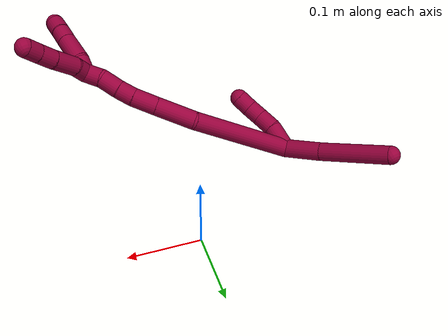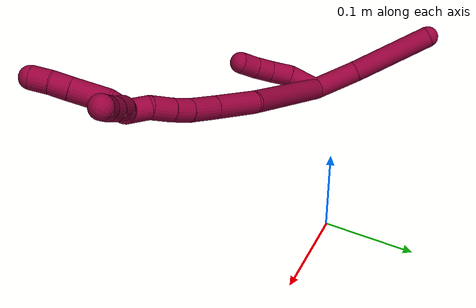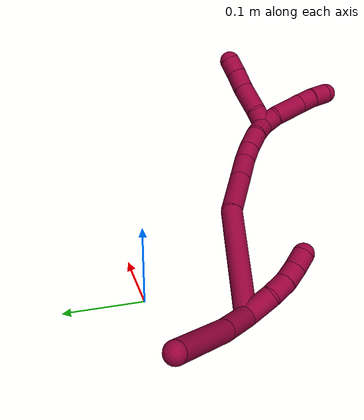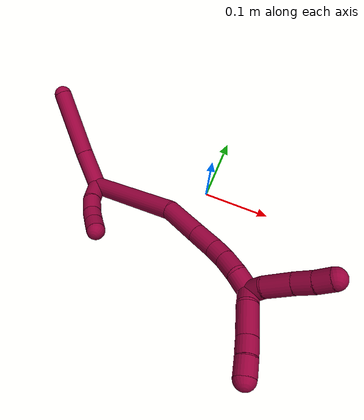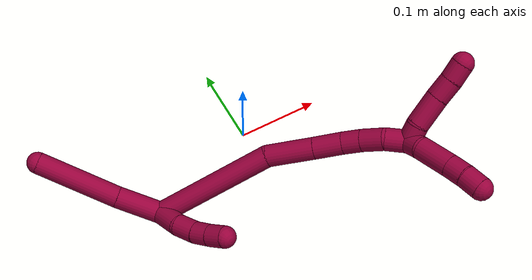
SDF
<sdf version="1.7">
 <world name="default">
  <model name="8">
   <static>0</static>
   <link name="8">
    <collision name="collision-cylinder-e_1_2_8">
     <pose>-0.010317 0.018119 -0.016301 -2.30344 -0.400434 0.854935</pose>
     <geometry><cylinder><radius>0.0125</radius><length>0.052933</length></cylinder></geometry>
     <surface>
      <friction><ode><mu>1.16</mu><mu2>1.16</mu2><slip1>0</slip1><slip2>0</slip2></ode></friction>
      <contact><ode><kp>1e+06</kp><kd>1</kd><max_vel>0</max_vel><min_depth>0.001</min_depth></ode></contact>
     </surface>
    </collision>
    <visual name="visual-cylinder-e_1_2_8">
     <pose>-0.010317 0.018119 -0.016301 -2.30344 -0.400434 0.854935</pose>
     <geometry><cylinder><radius>0.0125</radius><length>0.052933</length></cylinder></geometry>
     <material><ambient>0.584314 0 0.227451 1</ambient></material>
    </visual>
    <collision name="collision-cylinder-e_2_8_6">
     <pose>-0.037043 0.072261 -0.060685 -2.23295 -0.344882 0.685117</pose>
     <geometry><cylinder><radius>0.0125</radius><length>0.097067</length></cylinder></geometry>
     <surface>
      <friction><ode><mu>1.16</mu><mu2>1.16</mu2><slip1>0</slip1><slip2>0</slip2></ode></friction>
      <contact><ode><kp>1e+06</kp><kd>1</kd><max_vel>0</max_vel><min_depth>0.001</min_depth></ode></contact>
     </surface>
    </collision>
    <visual name="visual-cylinder-e_2_8_6">
     <pose>-0.037043 0.072261 -0.060685 -2.23295 -0.344882 0.685117</pose>
     <geometry><cylinder><radius>0.0125</radius><length>0.097067</length></cylinder></geometry>
     <material><ambient>0.584314 0 0.227451 1</ambient></material>
    </visual>
    <collision name="collision-cylinder-e_1_2_9">
     <pose>0.000535 -0.00062 0.017519 0.035351 0.030518 0.00054</pose>
     <geometry><cylinder><radius>0.0125</radius><length>0.035075</length></cylinder></geometry>
     <surface>
      <friction><ode><mu>1.16</mu><mu2>1.16</mu2><slip1>0</slip1><slip2>0</slip2></ode></friction>
      <contact><ode><kp>1e+06</kp><kd>1</kd><max_vel>0</max_vel><min_depth>0.001</min_depth></ode></contact>
     </surface>
    </collision>
    <visual name="visual-cylinder-e_1_2_9">
     <pose>0.000535 -0.00062 0.017519 0.035351 0.030518 0.00054</pose>
     <geometry><cylinder><radius>0.0125</radius><length>0.035075</length></cylinder></geometry>
     <material><ambient>0.584314 0 0.227451 1</ambient></material>
    </visual>
    <collision name="collision-cylinder-e_2_9_10">
     <pose>0.003844 -0.003828 0.046689 0.218598 0.228361 0.025168</pose>
     <geometry><cylinder><radius>0.0125</radius><length>0.024509</length></cylinder></geometry>
     <surface>
      <friction><ode><mu>1.16</mu><mu2>1.16</mu2><slip1>0</slip1><slip2>0</slip2></ode></friction>
      <contact><ode><kp>1e+06</kp><kd>1</kd><max_vel>0</max_vel><min_depth>0.001</min_depth></ode></contact>
     </surface>
    </collision>
    <visual name="visual-cylinder-e_2_9_10">
     <pose>0.003844 -0.003828 0.046689 0.218598 0.228361 0.025168</pose>
     <geometry><cylinder><radius>0.0125</radius><length>0.024509</length></cylinder></geometry>
     <material><ambient>0.584314 0 0.227451 1</ambient></material>
    </visual>
    <collision name="collision-cylinder-e_3_10_11">
     <pose>0.01026 -0.007286 0.067622 0.093429 0.372435 0.017614</pose>
     <geometry><cylinder><radius>0.0125</radius><length>0.020015</length></cylinder></geometry>
     <surface>
      <friction><ode><mu>1.16</mu><mu2>1.16</mu2><slip1>0</slip1><slip2>0</slip2></ode></friction>
      <contact><ode><kp>1e+06</kp><kd>1</kd><max_vel>0</max_vel><min_depth>0.001</min_depth></ode></contact>
     </surface>
    </collision>
    <visual name="visual-cylinder-e_3_10_11">
     <pose>0.01026 -0.007286 0.067622 0.093429 0.372435 0.017614</pose>
     <geometry><cylinder><radius>0.0125</radius><length>0.020015</length></cylinder></geometry>
     <material><ambient>0.584314 0 0.227451 1</ambient></material>
    </visual>
    <collision name="collision-cylinder-e_4_11_5">
     <pose>0.017938 -0.008195 0.086271 0.004237 0.406882 0.000874</pose>
     <geometry><cylinder><radius>0.0125</radius><length>0.020401</length></cylinder></geometry>
     <surface>
      <friction><ode><mu>1.16</mu><mu2>1.16</mu2><slip1>0</slip1><slip2>0</slip2></ode></friction>
      <contact><ode><kp>1e+06</kp><kd>1</kd><max_vel>0</max_vel><min_depth>0.001</min_depth></ode></contact>
     </surface>
    </collision>
    <visual name="visual-cylinder-e_4_11_5">
     <pose>0.017938 -0.008195 0.086271 0.004237 0.406882 0.000874</pose>
     <geometry><cylinder><radius>0.0125</radius><length>0.020401</length></cylinder></geometry>
     <material><ambient>0.584314 0 0.227451 1</ambient></material>
    </visual>
    <collision name="collision-cylinder-e_1_2_12">
     <pose>0.060568 0.002436 0.036023 -0.067508 1.03324 -0.03836</pose>
     <geometry><cylinder><radius>0.0125</radius><length>0.141027</length></cylinder></geometry>
     <surface>
      <friction><ode><mu>1.16</mu><mu2>1.16</mu2><slip1>0</slip1><slip2>0</slip2></ode></friction>
      <contact><ode><kp>1e+06</kp><kd>1</kd><max_vel>0</max_vel><min_depth>0.001</min_depth></ode></contact>
     </surface>
    </collision>
    <visual name="visual-cylinder-e_1_2_12">
     <pose>0.060568 0.002436 0.036023 -0.067508 1.03324 -0.03836</pose>
     <geometry><cylinder><radius>0.0125</radius><length>0.141027</length></cylinder></geometry>
     <material><ambient>0.584314 0 0.227451 1</ambient></material>
    </visual>
    <collision name="collision-cylinder-e_2_12_13">
     <pose>0.139947 0.000431 0.090856 0.231806 0.771856 0.094537</pose>
     <geometry><cylinder><radius>0.0125</radius><length>0.053938</length></cylinder></geometry>
     <surface>
      <friction><ode><mu>1.16</mu><mu2>1.16</mu2><slip1>0</slip1><slip2>0</slip2></ode></friction>
      <contact><ode><kp>1e+06</kp><kd>1</kd><max_vel>0</max_vel><min_depth>0.001</min_depth></ode></contact>
     </surface>
    </collision>
    <visual name="visual-cylinder-e_2_12_13">
     <pose>0.139947 0.000431 0.090856 0.231806 0.771856 0.094537</pose>
     <geometry><cylinder><radius>0.0125</radius><length>0.053938</length></cylinder></geometry>
     <material><ambient>0.584314 0 0.227451 1</ambient></material>
    </visual>
    <collision name="collision-cylinder-e_3_13_14">
     <pose>0.170151 -0.00642 0.121072 0.20835 0.773974 0.085167</pose>
     <geometry><cylinder><radius>0.0125</radius><length>0.032604</length></cylinder></geometry>
     <surface>
      <friction><ode><mu>1.16</mu><mu2>1.16</mu2><slip1>0</slip1><slip2>0</slip2></ode></friction>
      <contact><ode><kp>1e+06</kp><kd>1</kd><max_vel>0</max_vel><min_depth>0.001</min_depth></ode></contact>
     </surface>
    </collision>
    <visual name="visual-cylinder-e_3_13_14">
     <pose>0.170151 -0.00642 0.121072 0.20835 0.773974 0.085167</pose>
     <geometry><cylinder><radius>0.0125</radius><length>0.032604</length></cylinder></geometry>
     <material><ambient>0.584314 0 0.227451 1</ambient></material>
    </visual>
    <collision name="collision-cylinder-e_4_14_15">
     <pose>0.188281 -0.009772 0.140827 0.112114 0.675689 0.039423</pose>
     <geometry><cylinder><radius>0.0125</radius><length>0.021536</length></cylinder></geometry>
     <surface>
      <friction><ode><mu>1.16</mu><mu2>1.16</mu2><slip1>0</slip1><slip2>0</slip2></ode></friction>
      <contact><ode><kp>1e+06</kp><kd>1</kd><max_vel>0</max_vel><min_depth>0.001</min_depth></ode></contact>
     </surface>
    </collision>
    <visual name="visual-cylinder-e_4_14_15">
     <pose>0.188281 -0.009772 0.140827 0.112114 0.675689 0.039423</pose>
     <geometry><cylinder><radius>0.0125</radius><length>0.021536</length></cylinder></geometry>
     <material><ambient>0.584314 0 0.227451 1</ambient></material>
    </visual>
    <collision name="collision-cylinder-e_5_15_16">
     <pose>0.20201 -0.011735 0.159987 0.09436 0.572212 0.027777</pose>
     <geometry><cylinder><radius>0.0125</radius><length>0.025834</length></cylinder></geometry>
     <surface>
      <friction><ode><mu>1.16</mu><mu2>1.16</mu2><slip1>0</slip1><slip2>0</slip2></ode></friction>
      <contact><ode><kp>1e+06</kp><kd>1</kd><max_vel>0</max_vel><min_depth>0.001</min_depth></ode></contact>
     </surface>
    </collision>
    <visual name="visual-cylinder-e_5_15_16">
     <pose>0.20201 -0.011735 0.159987 0.09436 0.572212 0.027777</pose>
     <geometry><cylinder><radius>0.0125</radius><length>0.025834</length></cylinder></geometry>
     <material><ambient>0.584314 0 0.227451 1</ambient></material>
    </visual>
    <collision name="collision-cylinder-e_6_16_1">
     <pose>0.215725 -0.01757 0.180216 0.472413 0.566106 0.139793</pose>
     <geometry><cylinder><radius>0.0125</radius><length>0.025061</length></cylinder></geometry>
     <surface>
      <friction><ode><mu>1.16</mu><mu2>1.16</mu2><slip1>0</slip1><slip2>0</slip2></ode></friction>
      <contact><ode><kp>1e+06</kp><kd>1</kd><max_vel>0</max_vel><min_depth>0.001</min_depth></ode></contact>
     </surface>
    </collision>
    <visual name="visual-cylinder-e_6_16_1">
     <pose>0.215725 -0.01757 0.180216 0.472413 0.566106 0.139793</pose>
     <geometry><cylinder><radius>0.0125</radius><length>0.025061</length></cylinder></geometry>
     <material><ambient>0.584314 0 0.227451 1</ambient></material>
    </visual>
    <collision name="collision-cylinder-e_1_1_17">
     <pose>0.222057 -0.021826 0.199684 -0.055372 -0.038622 0.00107</pose>
     <geometry><cylinder><radius>0.0125</radius><length>0.020146</length></cylinder></geometry>
     <surface>
      <friction><ode><mu>1.16</mu><mu2>1.16</mu2><slip1>0</slip1><slip2>0</slip2></ode></friction>
      <contact><ode><kp>1e+06</kp><kd>1</kd><max_vel>0</max_vel><min_depth>0.001</min_depth></ode></contact>
     </surface>
    </collision>
    <visual name="visual-cylinder-e_1_1_17">
     <pose>0.222057 -0.021826 0.199684 -0.055372 -0.038622 0.00107</pose>
     <geometry><cylinder><radius>0.0125</radius><length>0.020146</length></cylinder></geometry>
     <material><ambient>0.584314 0 0.227451 1</ambient></material>
    </visual>
    <collision name="collision-cylinder-e_2_17_18">
     <pose>0.221647 -0.025654 0.228673 0.22756 -0.001068 -0.000122</pose>
     <geometry><cylinder><radius>0.0125</radius><length>0.03888</length></cylinder></geometry>
     <surface>
      <friction><ode><mu>1.16</mu><mu2>1.16</mu2><slip1>0</slip1><slip2>0</slip2></ode></friction>
      <contact><ode><kp>1e+06</kp><kd>1</kd><max_vel>0</max_vel><min_depth>0.001</min_depth></ode></contact>
     </surface>
    </collision>
    <visual name="visual-cylinder-e_2_17_18">
     <pose>0.221647 -0.025654 0.228673 0.22756 -0.001068 -0.000122</pose>
     <geometry><cylinder><radius>0.0125</radius><length>0.03888</length></cylinder></geometry>
     <material><ambient>0.584314 0 0.227451 1</ambient></material>
    </visual>
    <collision name="collision-cylinder-e_3_18_19">
     <pose>0.221277 -0.032246 0.257408 0.221441 -0.034815 -0.003871</pose>
     <geometry><cylinder><radius>0.0125</radius><length>0.020097</length></cylinder></geometry>
     <surface>
      <friction><ode><mu>1.16</mu><mu2>1.16</mu2><slip1>0</slip1><slip2>0</slip2></ode></friction>
      <contact><ode><kp>1e+06</kp><kd>1</kd><max_vel>0</max_vel><min_depth>0.001</min_depth></ode></contact>
     </surface>
    </collision>
    <visual name="visual-cylinder-e_3_18_19">
     <pose>0.221277 -0.032246 0.257408 0.221441 -0.034815 -0.003871</pose>
     <geometry><cylinder><radius>0.0125</radius><length>0.020097</length></cylinder></geometry>
     <material><ambient>0.584314 0 0.227451 1</ambient></material>
    </visual>
    <collision name="collision-cylinder-e_4_19_4">
     <pose>0.220091 -0.037957 0.277002 0.343651 -0.080169 -0.01392</pose>
     <geometry><cylinder><radius>0.0125</radius><length>0.020877</length></cylinder></geometry>
     <surface>
      <friction><ode><mu>1.16</mu><mu2>1.16</mu2><slip1>0</slip1><slip2>0</slip2></ode></friction>
      <contact><ode><kp>1e+06</kp><kd>1</kd><max_vel>0</max_vel><min_depth>0.001</min_depth></ode></contact>
     </surface>
    </collision>
    <visual name="visual-cylinder-e_4_19_4">
     <pose>0.220091 -0.037957 0.277002 0.343651 -0.080169 -0.01392</pose>
     <geometry><cylinder><radius>0.0125</radius><length>0.020877</length></cylinder></geometry>
     <material><ambient>0.584314 0 0.227451 1</ambient></material>
    </visual>
    <collision name="collision-cylinder-e_1_1_20">
     <pose>0.230866 -0.016132 0.191956 -1.21513 0.900969 -0.648804</pose>
     <geometry><cylinder><radius>0.0125</radius><length>0.021481</length></cylinder></geometry>
     <surface>
      <friction><ode><mu>1.16</mu><mu2>1.16</mu2><slip1>0</slip1><slip2>0</slip2></ode></friction>
      <contact><ode><kp>1e+06</kp><kd>1</kd><max_vel>0</max_vel><min_depth>0.001</min_depth></ode></contact>
     </surface>
    </collision>
    <visual name="visual-cylinder-e_1_1_20">
     <pose>0.230866 -0.016132 0.191956 -1.21513 0.900969 -0.648804</pose>
     <geometry><cylinder><radius>0.0125</radius><length>0.021481</length></cylinder></geometry>
     <material><ambient>0.584314 0 0.227451 1</ambient></material>
    </visual>
    <collision name="collision-cylinder-e_2_20_21">
     <pose>0.255031 -0.003326 0.197909 -1.06487 1.12662 -0.712478</pose>
     <geometry><cylinder><radius>0.0125</radius><length>0.034875</length></cylinder></geometry>
     <surface>
      <friction><ode><mu>1.16</mu><mu2>1.16</mu2><slip1>0</slip1><slip2>0</slip2></ode></friction>
      <contact><ode><kp>1e+06</kp><kd>1</kd><max_vel>0</max_vel><min_depth>0.001</min_depth></ode></contact>
     </surface>
    </collision>
    <visual name="visual-cylinder-e_2_20_21">
     <pose>0.255031 -0.003326 0.197909 -1.06487 1.12662 -0.712478</pose>
     <geometry><cylinder><radius>0.0125</radius><length>0.034875</length></cylinder></geometry>
     <material><ambient>0.584314 0 0.227451 1</ambient></material>
    </visual>
    <collision name="collision-cylinder-e_3_21_22">
     <pose>0.280932 0.007722 0.204932 -0.924355 1.06456 -0.570801</pose>
     <geometry><cylinder><radius>0.0125</radius><length>0.023222</length></cylinder></geometry>
     <surface>
      <friction><ode><mu>1.16</mu><mu2>1.16</mu2><slip1>0</slip1><slip2>0</slip2></ode></friction>
      <contact><ode><kp>1e+06</kp><kd>1</kd><max_vel>0</max_vel><min_depth>0.001</min_depth></ode></contact>
     </surface>
    </collision>
    <visual name="visual-cylinder-e_3_21_22">
     <pose>0.280932 0.007722 0.204932 -0.924355 1.06456 -0.570801</pose>
     <geometry><cylinder><radius>0.0125</radius><length>0.023222</length></cylinder></geometry>
     <material><ambient>0.584314 0 0.227451 1</ambient></material>
    </visual>
    <collision name="collision-cylinder-e_4_22_3">
     <pose>0.299884 0.016852 0.210641 -1.10712 1.03847 -0.679092</pose>
     <geometry><cylinder><radius>0.0125</radius><length>0.020422</length></cylinder></geometry>
     <surface>
      <friction><ode><mu>1.16</mu><mu2>1.16</mu2><slip1>0</slip1><slip2>0</slip2></ode></friction>
      <contact><ode><kp>1e+06</kp><kd>1</kd><max_vel>0</max_vel><min_depth>0.001</min_depth></ode></contact>
     </surface>
    </collision>
    <visual name="visual-cylinder-e_4_22_3">
     <pose>0.299884 0.016852 0.210641 -1.10712 1.03847 -0.679092</pose>
     <geometry><cylinder><radius>0.0125</radius><length>0.020422</length></cylinder></geometry>
     <material><ambient>0.584314 0 0.227451 1</ambient></material>
    </visual>
    <collision name="collision-sphere-3">
     <pose>0.308682 0.021487 0.212958 0 -0 0</pose>
     <geometry><sphere><radius>0.0125</radius></sphere></geometry>
     <surface>
      <friction><ode><mu>1.16</mu><mu2>1.16</mu2><slip1>0</slip1><slip2>0</slip2></ode></friction>
      <contact><ode><kp>1e+06</kp><kd>1</kd><max_vel>0</max_vel><min_depth>0.001</min_depth></ode></contact>
     </surface>
    </collision>
    <visual name="visual-sphere-3">
     <pose>0.308682 0.021487 0.212958 0 -0 0</pose>
     <geometry><sphere><radius>0.0125</radius></sphere></geometry>
     <material><ambient>0.584314 0 0.227451 1</ambient></material>
    </visual>
    <collision name="collision-sphere-22">
     <pose>0.291086 0.012216 0.208323 0 -0 0</pose>
     <geometry><sphere><radius>0.0125</radius></sphere></geometry>
     <surface>
      <friction><ode><mu>1.16</mu><mu2>1.16</mu2><slip1>0</slip1><slip2>0</slip2></ode></friction>
      <contact><ode><kp>1e+06</kp><kd>1</kd><max_vel>0</max_vel><min_depth>0.001</min_depth></ode></contact>
     </surface>
    </collision>
    <visual name="visual-sphere-22">
     <pose>0.291086 0.012216 0.208323 0 -0 0</pose>
     <geometry><sphere><radius>0.0125</radius></sphere></geometry>
     <material><ambient>0.584314 0 0.227451 1</ambient></material>
    </visual>
    <collision name="collision-sphere-21">
     <pose>0.270777 0.003228 0.20154 0 -0 0</pose>
     <geometry><sphere><radius>0.0125</radius></sphere></geometry>
     <surface>
      <friction><ode><mu>1.16</mu><mu2>1.16</mu2><slip1>0</slip1><slip2>0</slip2></ode></friction>
      <contact><ode><kp>1e+06</kp><kd>1</kd><max_vel>0</max_vel><min_depth>0.001</min_depth></ode></contact>
     </surface>
    </collision>
    <visual name="visual-sphere-21">
     <pose>0.270777 0.003228 0.20154 0 -0 0</pose>
     <geometry><sphere><radius>0.0125</radius></sphere></geometry>
     <material><ambient>0.584314 0 0.227451 1</ambient></material>
    </visual>
    <collision name="collision-sphere-20">
     <pose>0.239286 -0.009881 0.194278 0 -0 0</pose>
     <geometry><sphere><radius>0.0125</radius></sphere></geometry>
     <surface>
      <friction><ode><mu>1.16</mu><mu2>1.16</mu2><slip1>0</slip1><slip2>0</slip2></ode></friction>
      <contact><ode><kp>1e+06</kp><kd>1</kd><max_vel>0</max_vel><min_depth>0.001</min_depth></ode></contact>
     </surface>
    </collision>
    <visual name="visual-sphere-20">
     <pose>0.239286 -0.009881 0.194278 0 -0 0</pose>
     <geometry><sphere><radius>0.0125</radius></sphere></geometry>
     <material><ambient>0.584314 0 0.227451 1</ambient></material>
    </visual>
    <collision name="collision-sphere-4">
     <pose>0.219255 -0.041463 0.286799 0 -0 0</pose>
     <geometry><sphere><radius>0.0125</radius></sphere></geometry>
     <surface>
      <friction><ode><mu>1.16</mu><mu2>1.16</mu2><slip1>0</slip1><slip2>0</slip2></ode></friction>
      <contact><ode><kp>1e+06</kp><kd>1</kd><max_vel>0</max_vel><min_depth>0.001</min_depth></ode></contact>
     </surface>
    </collision>
    <visual name="visual-sphere-4">
     <pose>0.219255 -0.041463 0.286799 0 -0 0</pose>
     <geometry><sphere><radius>0.0125</radius></sphere></geometry>
     <material><ambient>0.584314 0 0.227451 1</ambient></material>
    </visual>
    <collision name="collision-sphere-11">
     <pose>0.013902 -0.008155 0.076903 0 -0 0</pose>
     <geometry><sphere><radius>0.0125</radius></sphere></geometry>
     <surface>
      <friction><ode><mu>1.16</mu><mu2>1.16</mu2><slip1>0</slip1><slip2>0</slip2></ode></friction>
      <contact><ode><kp>1e+06</kp><kd>1</kd><max_vel>0</max_vel><min_depth>0.001</min_depth></ode></contact>
     </surface>
    </collision>
    <visual name="visual-sphere-11">
     <pose>0.013902 -0.008155 0.076903 0 -0 0</pose>
     <geometry><sphere><radius>0.0125</radius></sphere></geometry>
     <material><ambient>0.584314 0 0.227451 1</ambient></material>
    </visual>
    <collision name="collision-sphere-10">
     <pose>0.006619 -0.006416 0.058342 0 -0 0</pose>
     <geometry><sphere><radius>0.0125</radius></sphere></geometry>
     <surface>
      <friction><ode><mu>1.16</mu><mu2>1.16</mu2><slip1>0</slip1><slip2>0</slip2></ode></friction>
      <contact><ode><kp>1e+06</kp><kd>1</kd><max_vel>0</max_vel><min_depth>0.001</min_depth></ode></contact>
     </surface>
    </collision>
    <visual name="visual-sphere-10">
     <pose>0.006619 -0.006416 0.058342 0 -0 0</pose>
     <geometry><sphere><radius>0.0125</radius></sphere></geometry>
     <material><ambient>0.584314 0 0.227451 1</ambient></material>
    </visual>
    <collision name="collision-sphere-6">
     <pose>-0.053451 0.108284 -0.088767 0 -0 0</pose>
     <geometry><sphere><radius>0.0125</radius></sphere></geometry>
     <surface>
      <friction><ode><mu>1.16</mu><mu2>1.16</mu2><slip1>0</slip1><slip2>0</slip2></ode></friction>
      <contact><ode><kp>1e+06</kp><kd>1</kd><max_vel>0</max_vel><min_depth>0.001</min_depth></ode></contact>
     </surface>
    </collision>
    <visual name="visual-sphere-6">
     <pose>-0.053451 0.108284 -0.088767 0 -0 0</pose>
     <geometry><sphere><radius>0.0125</radius></sphere></geometry>
     <material><ambient>0.584314 0 0.227451 1</ambient></material>
    </visual>
    <collision name="collision-sphere-9">
     <pose>0.00107 -0.001239 0.035037 0 -0 0</pose>
     <geometry><sphere><radius>0.0125</radius></sphere></geometry>
     <surface>
      <friction><ode><mu>1.16</mu><mu2>1.16</mu2><slip1>0</slip1><slip2>0</slip2></ode></friction>
      <contact><ode><kp>1e+06</kp><kd>1</kd><max_vel>0</max_vel><min_depth>0.001</min_depth></ode></contact>
     </surface>
    </collision>
    <visual name="visual-sphere-9">
     <pose>0.00107 -0.001239 0.035037 0 -0 0</pose>
     <geometry><sphere><radius>0.0125</radius></sphere></geometry>
     <material><ambient>0.584314 0 0.227451 1</ambient></material>
    </visual>
    <collision name="collision-sphere-2">
     <geometry><sphere><radius>0.0125</radius></sphere></geometry>
     <surface>
      <friction><ode><mu>1.16</mu><mu2>1.16</mu2><slip1>0</slip1><slip2>0</slip2></ode></friction>
      <contact><ode><kp>1e+06</kp><kd>1</kd><max_vel>0</max_vel><min_depth>0.001</min_depth></ode></contact>
     </surface>
    </collision>
    <visual name="visual-sphere-2">
     <geometry><sphere><radius>0.0125</radius></sphere></geometry>
     <material><ambient>0.584314 0 0.227451 1</ambient></material>
    </visual>
    <collision name="collision-sphere-19">
     <pose>0.220927 -0.034451 0.267205 0 -0 0</pose>
     <geometry><sphere><radius>0.0125</radius></sphere></geometry>
     <surface>
      <friction><ode><mu>1.16</mu><mu2>1.16</mu2><slip1>0</slip1><slip2>0</slip2></ode></friction>
      <contact><ode><kp>1e+06</kp><kd>1</kd><max_vel>0</max_vel><min_depth>0.001</min_depth></ode></contact>
     </surface>
    </collision>
    <visual name="visual-sphere-19">
     <pose>0.220927 -0.034451 0.267205 0 -0 0</pose>
     <geometry><sphere><radius>0.0125</radius></sphere></geometry>
     <material><ambient>0.584314 0 0.227451 1</ambient></material>
    </visual>
    <collision name="collision-sphere-8">
     <pose>-0.020634 0.036238 -0.032603 0 -0 0</pose>
     <geometry><sphere><radius>0.0125</radius></sphere></geometry>
     <surface>
      <friction><ode><mu>1.16</mu><mu2>1.16</mu2><slip1>0</slip1><slip2>0</slip2></ode></friction>
      <contact><ode><kp>1e+06</kp><kd>1</kd><max_vel>0</max_vel><min_depth>0.001</min_depth></ode></contact>
     </surface>
    </collision>
    <visual name="visual-sphere-8">
     <pose>-0.020634 0.036238 -0.032603 0 -0 0</pose>
     <geometry><sphere><radius>0.0125</radius></sphere></geometry>
     <material><ambient>0.584314 0 0.227451 1</ambient></material>
    </visual>
    <collision name="collision-sphere-5">
     <pose>0.021975 -0.008235 0.095638 0 -0 0</pose>
     <geometry><sphere><radius>0.0125</radius></sphere></geometry>
     <surface>
      <friction><ode><mu>1.16</mu><mu2>1.16</mu2><slip1>0</slip1><slip2>0</slip2></ode></friction>
      <contact><ode><kp>1e+06</kp><kd>1</kd><max_vel>0</max_vel><min_depth>0.001</min_depth></ode></contact>
     </surface>
    </collision>
    <visual name="visual-sphere-5">
     <pose>0.021975 -0.008235 0.095638 0 -0 0</pose>
     <geometry><sphere><radius>0.0125</radius></sphere></geometry>
     <material><ambient>0.584314 0 0.227451 1</ambient></material>
    </visual>
    <collision name="collision-sphere-12">
     <pose>0.121137 0.004871 0.072047 0 -0 0</pose>
     <geometry><sphere><radius>0.0125</radius></sphere></geometry>
     <surface>
      <friction><ode><mu>1.16</mu><mu2>1.16</mu2><slip1>0</slip1><slip2>0</slip2></ode></friction>
      <contact><ode><kp>1e+06</kp><kd>1</kd><max_vel>0</max_vel><min_depth>0.001</min_depth></ode></contact>
     </surface>
    </collision>
    <visual name="visual-sphere-12">
     <pose>0.121137 0.004871 0.072047 0 -0 0</pose>
     <geometry><sphere><radius>0.0125</radius></sphere></geometry>
     <material><ambient>0.584314 0 0.227451 1</ambient></material>
    </visual>
    <collision name="collision-sphere-13">
     <pose>0.158756 -0.004009 0.109666 0 -0 0</pose>
     <geometry><sphere><radius>0.0125</radius></sphere></geometry>
     <surface>
      <friction><ode><mu>1.16</mu><mu2>1.16</mu2><slip1>0</slip1><slip2>0</slip2></ode></friction>
      <contact><ode><kp>1e+06</kp><kd>1</kd><max_vel>0</max_vel><min_depth>0.001</min_depth></ode></contact>
     </surface>
    </collision>
    <visual name="visual-sphere-13">
     <pose>0.158756 -0.004009 0.109666 0 -0 0</pose>
     <geometry><sphere><radius>0.0125</radius></sphere></geometry>
     <material><ambient>0.584314 0 0.227451 1</ambient></material>
    </visual>
    <collision name="collision-sphere-14">
     <pose>0.181546 -0.008832 0.132478 0 -0 0</pose>
     <geometry><sphere><radius>0.0125</radius></sphere></geometry>
     <surface>
      <friction><ode><mu>1.16</mu><mu2>1.16</mu2><slip1>0</slip1><slip2>0</slip2></ode></friction>
      <contact><ode><kp>1e+06</kp><kd>1</kd><max_vel>0</max_vel><min_depth>0.001</min_depth></ode></contact>
     </surface>
    </collision>
    <visual name="visual-sphere-14">
     <pose>0.181546 -0.008832 0.132478 0 -0 0</pose>
     <geometry><sphere><radius>0.0125</radius></sphere></geometry>
     <material><ambient>0.584314 0 0.227451 1</ambient></material>
    </visual>
    <collision name="collision-sphere-15">
     <pose>0.195015 -0.010712 0.149176 0 -0 0</pose>
     <geometry><sphere><radius>0.0125</radius></sphere></geometry>
     <surface>
      <friction><ode><mu>1.16</mu><mu2>1.16</mu2><slip1>0</slip1><slip2>0</slip2></ode></friction>
      <contact><ode><kp>1e+06</kp><kd>1</kd><max_vel>0</max_vel><min_depth>0.001</min_depth></ode></contact>
     </surface>
    </collision>
    <visual name="visual-sphere-15">
     <pose>0.195015 -0.010712 0.149176 0 -0 0</pose>
     <geometry><sphere><radius>0.0125</radius></sphere></geometry>
     <material><ambient>0.584314 0 0.227451 1</ambient></material>
    </visual>
    <collision name="collision-sphere-16">
     <pose>0.209004 -0.012758 0.170799 0 -0 0</pose>
     <geometry><sphere><radius>0.0125</radius></sphere></geometry>
     <surface>
      <friction><ode><mu>1.16</mu><mu2>1.16</mu2><slip1>0</slip1><slip2>0</slip2></ode></friction>
      <contact><ode><kp>1e+06</kp><kd>1</kd><max_vel>0</max_vel><min_depth>0.001</min_depth></ode></contact>
     </surface>
    </collision>
    <visual name="visual-sphere-16">
     <pose>0.209004 -0.012758 0.170799 0 -0 0</pose>
     <geometry><sphere><radius>0.0125</radius></sphere></geometry>
     <material><ambient>0.584314 0 0.227451 1</ambient></material>
    </visual>
    <collision name="collision-sphere-1">
     <pose>0.222446 -0.022383 0.189633 0 -0 0</pose>
     <geometry><sphere><radius>0.0125</radius></sphere></geometry>
     <surface>
      <friction><ode><mu>1.16</mu><mu2>1.16</mu2><slip1>0</slip1><slip2>0</slip2></ode></friction>
      <contact><ode><kp>1e+06</kp><kd>1</kd><max_vel>0</max_vel><min_depth>0.001</min_depth></ode></contact>
     </surface>
    </collision>
    <visual name="visual-sphere-1">
     <pose>0.222446 -0.022383 0.189633 0 -0 0</pose>
     <geometry><sphere><radius>0.0125</radius></sphere></geometry>
     <material><ambient>0.584314 0 0.227451 1</ambient></material>
    </visual>
    <collision name="collision-sphere-18">
     <pose>0.221627 -0.03004 0.247611 0 -0 0</pose>
     <geometry><sphere><radius>0.0125</radius></sphere></geometry>
     <surface>
      <friction><ode><mu>1.16</mu><mu2>1.16</mu2><slip1>0</slip1><slip2>0</slip2></ode></friction>
      <contact><ode><kp>1e+06</kp><kd>1</kd><max_vel>0</max_vel><min_depth>0.001</min_depth></ode></contact>
     </surface>
    </collision>
    <visual name="visual-sphere-18">
     <pose>0.221627 -0.03004 0.247611 0 -0 0</pose>
     <geometry><sphere><radius>0.0125</radius></sphere></geometry>
     <material><ambient>0.584314 0 0.227451 1</ambient></material>
    </visual>
    <collision name="collision-sphere-17">
     <pose>0.221668 -0.021269 0.209734 0 -0 0</pose>
     <geometry><sphere><radius>0.0125</radius></sphere></geometry>
     <surface>
      <friction><ode><mu>1.16</mu><mu2>1.16</mu2><slip1>0</slip1><slip2>0</slip2></ode></friction>
      <contact><ode><kp>1e+06</kp><kd>1</kd><max_vel>0</max_vel><min_depth>0.001</min_depth></ode></contact>
     </surface>
    </collision>
    <visual name="visual-sphere-17">
     <pose>0.221668 -0.021269 0.209734 0 -0 0</pose>
     <geometry><sphere><radius>0.0125</radius></sphere></geometry>
     <material><ambient>0.584314 0 0.227451 1</ambient></material>
    </visual>
    <inertial>
     <pose>0.10866 0.005242 0.090247 0 -0 0</pose>
     <mass>0.75</mass>
     <inertia>
      <ixx>0.000306</ixx>
      <ixy>0</ixy>
      <ixz>0</ixz>
      <iyy>0.000325</iyy>
      <iyz>0</iyz>
      <izz>-0.00025</izz>
     </inertia>
    </inertial>
   </link>
   <pose>-0.148297 -0.077834 0.059065 1.08699 -0.203712 0.324961</pose>
  </model>
 </world>
</sdf>
